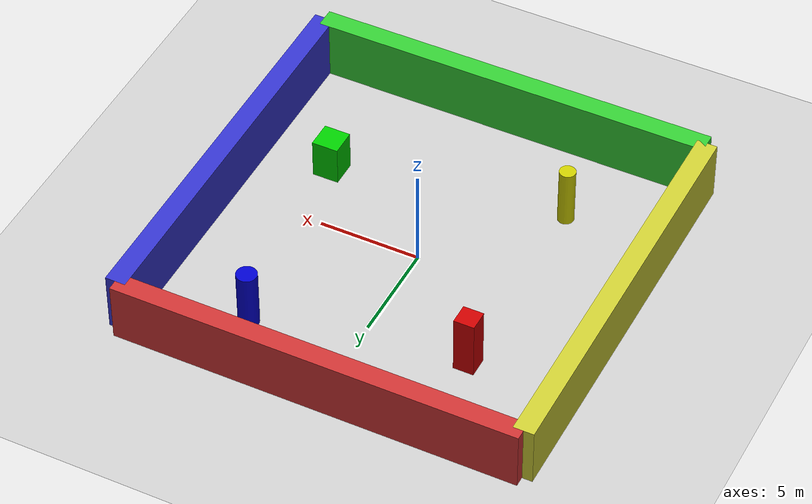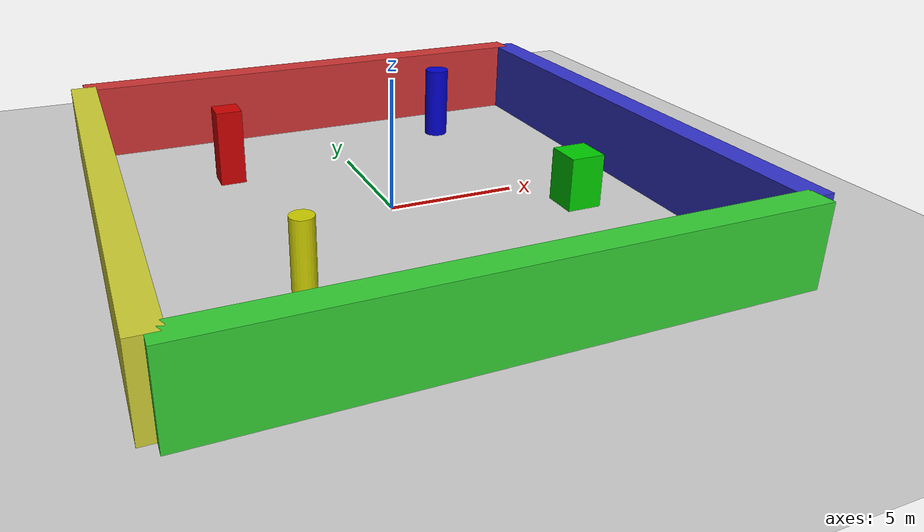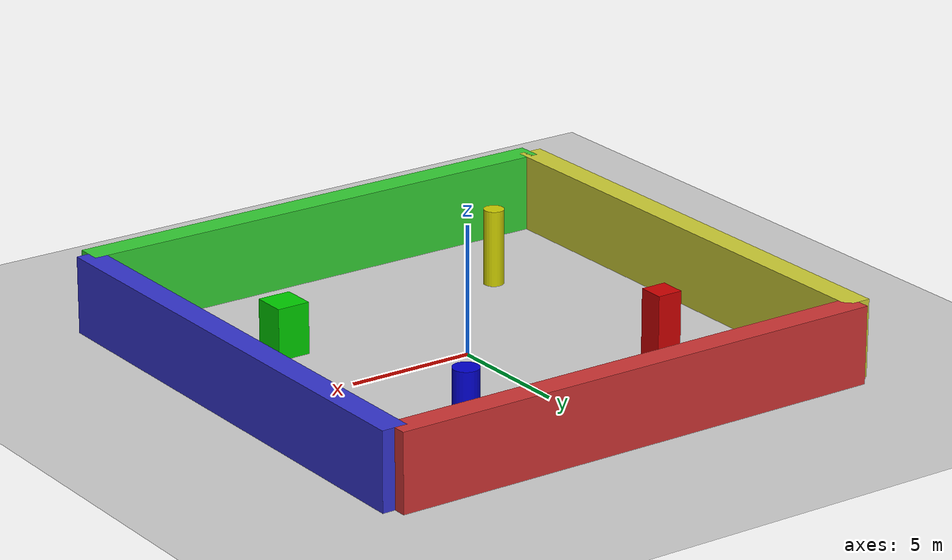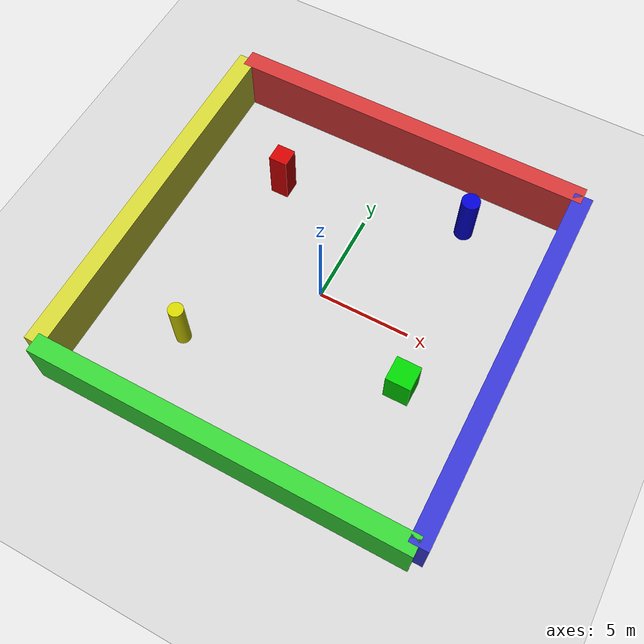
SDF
<sdf version="1.6">
  <world name="default">
    <physics name="1ms" type="ignored">
      <max_step_size>0.001</max_step_size>
      <real_time_factor>1.0</real_time_factor>
    </physics>

    <plugin filename="libgz-sim-physics-system.so"
        name="gz::sim::systems::Physics">
    </plugin>

    <plugin filename="libgz-sim-user-commands-system.so"
            name="gz::sim::systems::UserCommands">
    </plugin>

    <plugin filename="libgz-sim-scene-broadcaster-system.so"
            name="gz::sim::systems::SceneBroadcaster">
    </plugin>

    <plugin filename="libgz-sim-sensors-system.so"
            name="gz::sim::systems::Sensors">
    </plugin>

    <!-- Add a gray ground plane -->
    <model name="ground_plane">
      <static>true</static>
      <link name="link">
        <collision name="collision">
          <geometry>
            <plane>
              <normal>0 0 1</normal>
              <size>100 100</size>
            </plane>
          </geometry>
        </collision>
        <visual name="visual">
          <geometry>
            <plane>
              <normal>0 0 1</normal>
              <size>100 100</size>
            </plane>
          </geometry>
          <material>
            <ambient>0.8 0.8 0.8 1</ambient>
            <diffuse>0.8 0.8 0.8 1</diffuse>
            <specular>0.1 0.1 0.1 1</specular>
          </material>
        </visual>
      </link>
    </model>

    <!-- Add boundary walls -->
    <!-- North wall -->
    <model name="wall_north">
      <static>true</static>
      <pose>0 10 1.5 0 0 0</pose>
      <link name="link">
        <collision name="collision">
          <geometry>
            <box>
              <size>20 1.0 3</size>
            </box>
          </geometry>
        </collision>
        <visual name="visual">
          <geometry>
            <box>
              <size>20 1.0 3</size>
            </box>
          </geometry>
          <material>
            <ambient>0.8 0.2 0.2 1</ambient>
            <diffuse>0.8 0.2 0.2 1</diffuse>
            <specular>0.1 0.1 0.1 1</specular>
          </material>
        </visual>
      </link>
    </model>

    <!-- South wall -->
    <model name="wall_south">
      <static>true</static>
      <pose>0 -10 1.5 0 0 0</pose>
      <link name="link">
        <collision name="collision">
          <geometry>
            <box>
              <size>20 1.0 3</size>
            </box>
          </geometry>
        </collision>
        <visual name="visual">
          <geometry>
            <box>
              <size>20 1.0 3</size>
            </box>
          </geometry>
          <material>
            <ambient>0.2 0.8 0.2 1</ambient>
            <diffuse>0.2 0.8 0.2 1</diffuse>
            <specular>0.1 0.1 0.1 1</specular>
          </material>
        </visual>
      </link>
    </model>

    <!-- East wall -->
    <model name="wall_east">
      <static>true</static>
      <pose>10 0 1.5 0 0 0</pose>
      <link name="link">
        <collision name="collision">
          <geometry>
            <box>
              <size>1.0 20 3</size>
            </box>
          </geometry>
        </collision>
        <visual name="visual">
          <geometry>
            <box>
              <size>1.0 20 3</size>
            </box>
          </geometry>
          <material>
            <ambient>0.2 0.2 0.8 1</ambient>
            <diffuse>0.2 0.2 0.8 1</diffuse>
            <specular>0.1 0.1 0.1 1</specular>
          </material>
        </visual>
      </link>
    </model>

    <!-- West wall -->
    <model name="wall_west">
      <static>true</static>
      <pose>-10 0 1.5 0 0 0</pose>
      <link name="link">
        <collision name="collision">
          <geometry>
            <box>
              <size>1.0 20 3</size>
            </box>
          </geometry>
        </collision>
        <visual name="visual">
          <geometry>
            <box>
              <size>1.0 20 3</size>
            </box>
          </geometry>
          <material>
            <ambient>0.8 0.8 0.2 1</ambient>
            <diffuse>0.8 0.8 0.2 1</diffuse>
            <specular>0.1 0.1 0.1 1</specular>
          </material>
        </visual>
      </link>
    </model>

    <!-- Add Obstacles -->
    <!-- Blue Cillinder -->

    <model name="blue_cillinder">
      <static>true</static>
      <pose>5 7 1.5 0 0 0</pose>
      <link name="link">
        <collision name="collision">
          <geometry>
            <cylinder>
              <radius>0.5</radius>
              <length>3</length>
            </cylinder>
          </geometry>
        </collision>
        <visual name="visual">
          <geometry>
            <cylinder>
              <radius>0.5</radius>
              <length>3</length>
            </cylinder>
          </geometry>
          <material>
            <ambient>0.0 0.0 0.8 1</ambient>
            <diffuse>0.0 0.0 0.8 1</diffuse>
            <specular>0.1 0.1 0.1 1</specular>
          </material>
        </visual>
      </link>
    </model>

    <!-- Red Cube -->

    <model name="red_cube">
      <static>true</static>
      <pose>-5 5 1.5 0 0 0</pose>
      <link name="link">
        <collision name="collision">
          <geometry>
            <box>
              <size>1.0 1.0 3</size>
            </box>
          </geometry>
        </collision>
        <visual name="visual">
          <geometry>
            <box>
              <size>1.0 1.0 3</size>
            </box>
          </geometry>
          <material>
            <ambient>0.8 0.0 0.0 1</ambient>
            <diffuse>0.8 0.0 0.0 1</diffuse>
            <specular>0.1 0.1 0.1 1</specular>
          </material>
        </visual>
      </link>
    </model>

    <!-- Green Cube -->

    <model name="green_cube">
      <static>true</static>
      <pose>6 -3 1.5 0 0 0</pose>
      <link name="link">
        <collision name="collision">
          <geometry>
            <box>
              <size>1.3 1.3 2</size>
            </box>
          </geometry>
        </collision>
        <visual name="visual">
          <geometry>
            <box>
              <size>1.3 1.3 2</size>
            </box>
          </geometry>
          <material>
            <ambient>0.0 0.8 0.0 1</ambient>
            <diffuse>0.0 0.8 0.0 1</diffuse>
            <specular>0.1 0.1 0.1 1</specular>
          </material>
        </visual>
      </link>
    </model>

    <!-- Yellow Cillinder -->

    <model name="yellow_cillinder">
      <static>true</static>
      <pose>-5 -5.4 1.5 0 0 0</pose>
      <link name="link">
        <collision name="collision">
          <geometry>
            <cylinder>
              <radius>0.4</radius>
              <length>3</length>
            </cylinder>
          </geometry>
        </collision>
        <visual name="visual">
          <geometry>
            <cylinder>
              <radius>0.4</radius>
              <length>3</length>
            </cylinder>
          </geometry>
          <material>
            <ambient>0.8 0.8 0.0 1</ambient>
            <diffuse>0.8 0.8 0.0 1</diffuse>
            <specular>0.1 0.1 0.1 1</specular>
          </material>
        </visual>
      </link>
    </model>

    <light type="directional" name="sun">
      <cast_shadows>true</cast_shadows>
      <pose>0 0 10 0 0 0</pose>
      <diffuse>0.8 0.8 0.8 1</diffuse>
      <specular>0.2 0.2 0.2 1</specular>
      <attenuation>
        <range>1000</range>
        <constant>0.9</constant>
        <linear>0.01</linear>
        <quadratic>0.001</quadratic>
      </attenuation>
      <direction>-0.5 0.1 -0.9</direction>
    </light>

    <gravity>0 0 -9.8</gravity>
    <magnetic_field>6e-06 2.3e-05 -4.2e-05</magnetic_field>
    <atmosphere type="adiabatic">
      <pressure>101325</pressure>
      <temperature>288.15</temperature>
    </atmosphere>
  </world>
</sdf>
